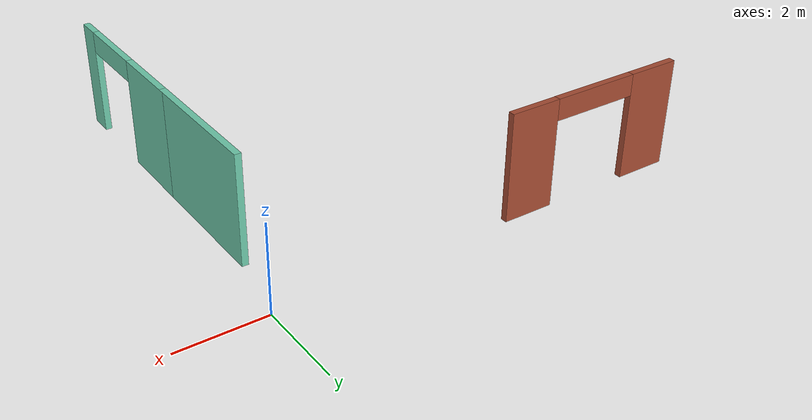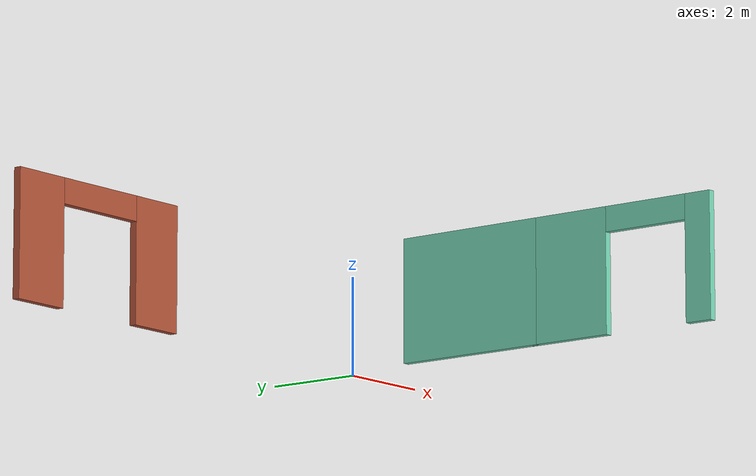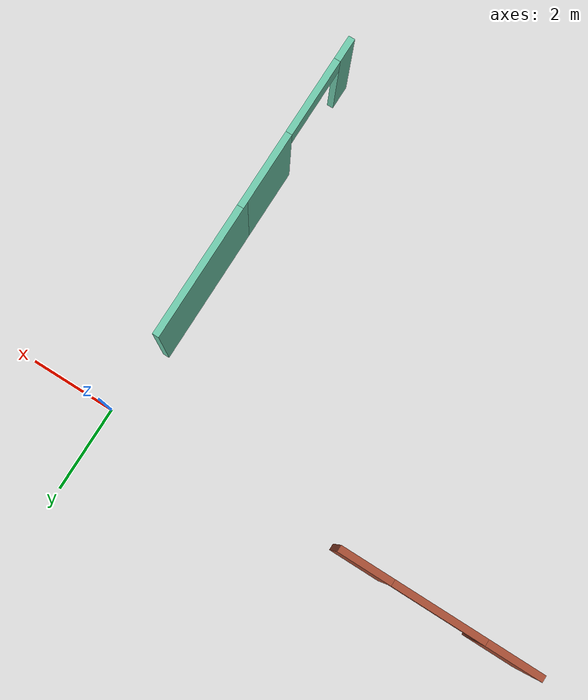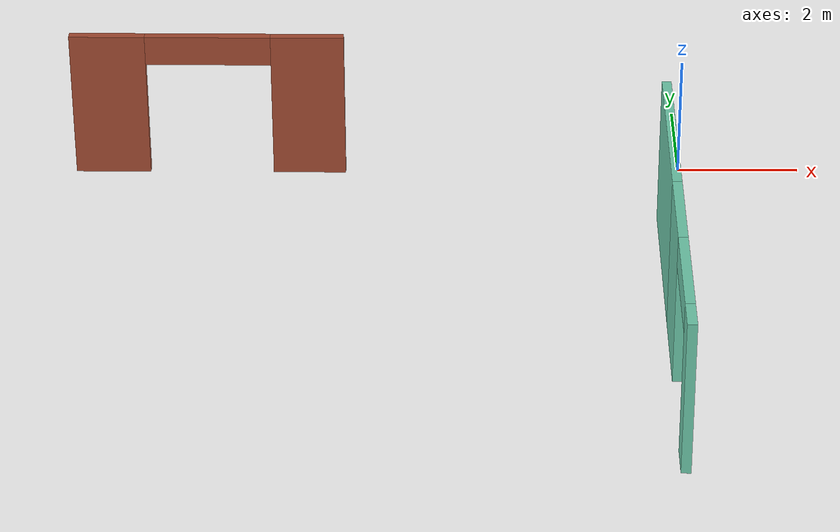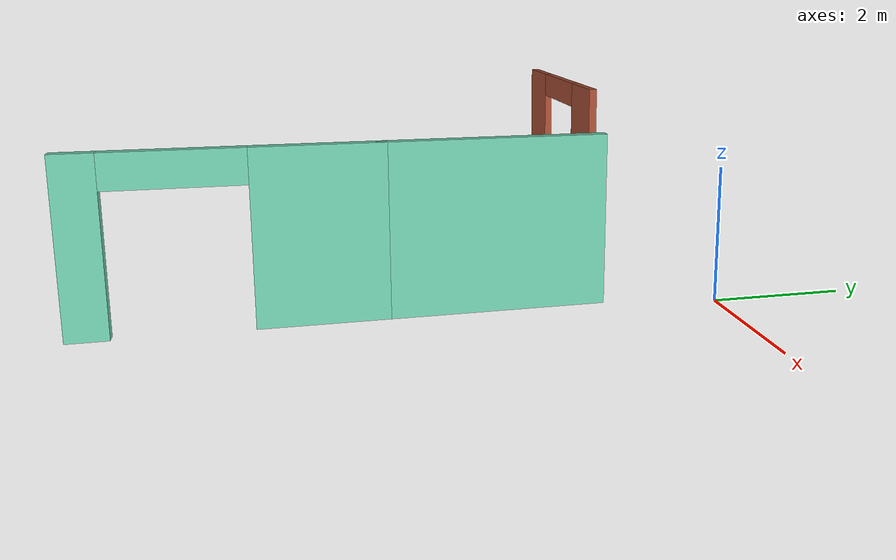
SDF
<?xml version='1.0'?>
<sdf version='1.6'>
  <model name='UdacityWorld3.world'>
    <pose frame=''>-5.16432 -4.47936 0 0 -0 0</pose>
    <link name='Wall_15'>
      <pose frame=''>-2.63932 4.42064 0 0 -0 3.14159</pose>
      <visual name='Wall_15_Visual_0'>
        <pose frame=''>-1.64927 0 1.25 0 -0 0</pose>
        <geometry>
          <box>
            <size>1.20147 0.15 2.5</size>
          </box>
        </geometry>
        <material>
          <script>
            <uri>file://media/materials/scripts/gazebo.material</uri>
            <name>Gazebo/Bricks</name>
          </script>
          <ambient>1 1 1 1</ambient>
        </material>
        <meta>
          <layer>0</layer>
        </meta>
      </visual>
      <collision name='Wall_15_Collision_0'>
        <geometry>
          <box>
            <size>1.20147 0.15 2.5</size>
          </box>
        </geometry>
        <pose frame=''>-1.64927 0 1.25 0 -0 0</pose>
      </collision>
      <visual name='Wall_15_Visual_1'>
        <pose frame=''>1.6306 0 1.25 0 -0 0</pose>
        <geometry>
          <box>
            <size>1.2388 0.15 2.5</size>
          </box>
        </geometry>
        <material>
          <script>
            <uri>file://media/materials/scripts/gazebo.material</uri>
            <name>Gazebo/Bricks</name>
          </script>
          <ambient>1 1 1 1</ambient>
        </material>
        <meta>
          <layer>0</layer>
        </meta>
      </visual>
      <collision name='Wall_15_Collision_1'>
        <geometry>
          <box>
            <size>1.2388 0.15 2.5</size>
          </box>
        </geometry>
        <pose frame=''>1.6306 0 1.25 0 -0 0</pose>
      </collision>
      <visual name='Wall_15_Visual_2'>
        <pose frame=''>-0.018668 0 2.25 0 -0 0</pose>
        <geometry>
          <box>
            <size>2.05973 0.15 0.5</size>
          </box>
        </geometry>
        <material>
          <script>
            <uri>file://media/materials/scripts/gazebo.material</uri>
            <name>Gazebo/Bricks</name>
          </script>
          <ambient>1 1 1 1</ambient>
        </material>
        <meta>
          <layer>0</layer>
        </meta>
      </visual>
      <collision name='Wall_15_Collision_2'>
        <geometry>
          <box>
            <size>2.05973 0.15 0.5</size>
          </box>
        </geometry>
        <pose frame=''>-0.018668 0 2.25 0 -0 0</pose>
      </collision>
    </link>
    <link name='Wall_2'>
      <collision name='Wall_2_Collision'>
        <geometry>
          <box>
            <size>3.25 0.15 2.5</size>
          </box>
        </geometry>
        <pose frame=''>0 0 1.25 0 -0 0</pose>
      </collision>
      <visual name='Wall_2_Visual'>
        <pose frame=''>0 0 1.25 0 -0 0</pose>
        <geometry>
          <box>
            <size>3.25 0.15 2.5</size>
          </box>
        </geometry>
        <material>
          <script>
            <uri>file://media/materials/scripts/gazebo.material</uri>
            <name>Gazebo/Grey</name>
          </script>
          <ambient>0.435294 0.796078 0.67451 1</ambient>
        </material>
        <meta>
          <layer>0</layer>
        </meta>
      </visual>
      <pose frame=''>4.81432 1.22936 0 0 -0 1.5708</pose>
    </link>
    <link name='Wall_4'>
      <pose frame=''>4.81432 -2.37064 0 0 0 -1.5708</pose>
      <visual name='Wall_4_Visual_0'>
        <pose frame=''>-1.21393 0 1.25 0 -0 0</pose>
        <geometry>
          <box>
            <size>1.82215 0.15 2.5</size>
          </box>
        </geometry>
        <material>
          <script>
            <uri>file://media/materials/scripts/gazebo.material</uri>
            <name>Gazebo/Grey</name>
          </script>
          <ambient>0.435294 0.796078 0.67451 1</ambient>
        </material>
        <meta>
          <layer>0</layer>
        </meta>
      </visual>
      <collision name='Wall_4_Collision_0'>
        <geometry>
          <box>
            <size>1.82215 0.15 2.5</size>
          </box>
        </geometry>
        <pose frame=''>-1.21393 0 1.25 0 -0 0</pose>
      </collision>
      <visual name='Wall_4_Visual_1'>
        <pose frame=''>1.83988 0 1.25 0 -0 0</pose>
        <geometry>
          <box>
            <size>0.570244 0.15 2.5</size>
          </box>
        </geometry>
        <material>
          <script>
            <uri>file://media/materials/scripts/gazebo.material</uri>
            <name>Gazebo/Grey</name>
          </script>
          <ambient>0.435294 0.796078 0.67451 1</ambient>
        </material>
        <meta>
          <layer>0</layer>
        </meta>
      </visual>
      <collision name='Wall_4_Collision_1'>
        <geometry>
          <box>
            <size>0.570244 0.15 2.5</size>
          </box>
        </geometry>
        <pose frame=''>1.83988 0 1.25 0 -0 0</pose>
      </collision>
      <visual name='Wall_4_Visual_2'>
        <pose frame=''>0.625952 0 2.25 0 -0 0</pose>
        <geometry>
          <box>
            <size>1.85761 0.15 0.5</size>
          </box>
        </geometry>
        <material>
          <script>
            <uri>file://media/materials/scripts/gazebo.material</uri>
            <name>Gazebo/Grey</name>
          </script>
          <ambient>0.435294 0.796078 0.67451 1</ambient>
        </material>
        <meta>
          <layer>0</layer>
        </meta>
      </visual>
      <collision name='Wall_4_Collision_2'>
        <geometry>
          <box>
            <size>1.85761 0.15 0.5</size>
          </box>
        </geometry>
        <pose frame=''>0.625952 0 2.25 0 -0 0</pose>
      </collision>
    </link>
    <static>1</static>
  </model>
</sdf>
